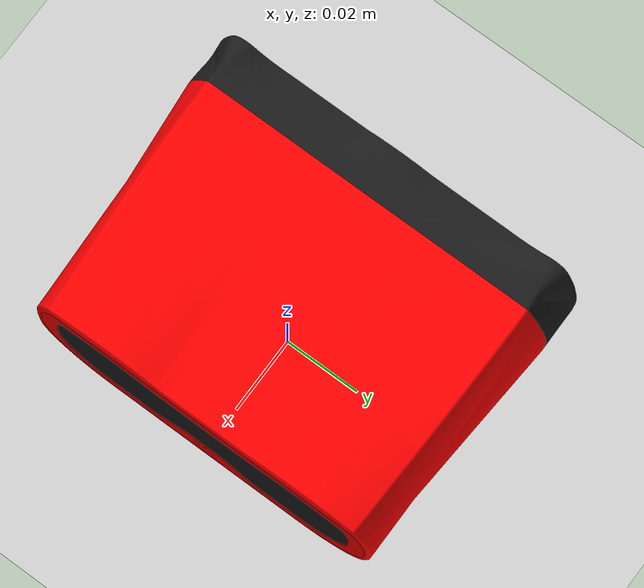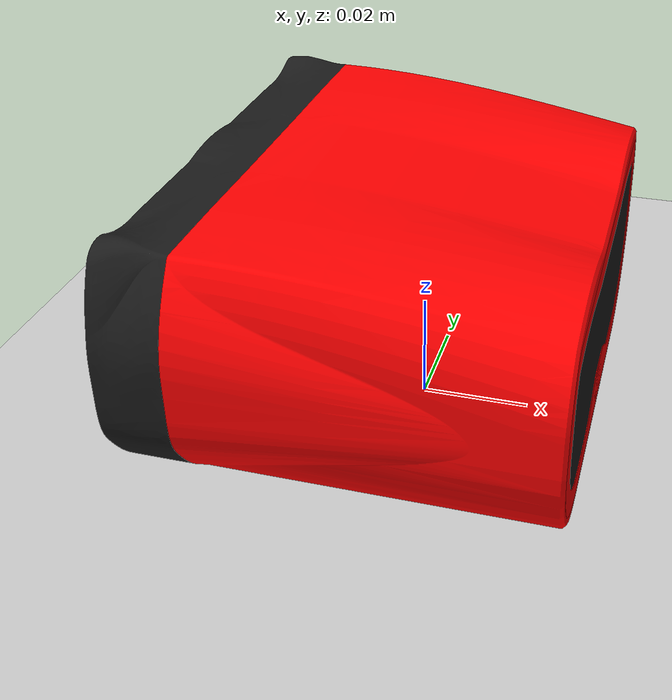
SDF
<?xml version="1.0" ?>
<sdf version="1.5">
  <world name="default">
    <!-- A global light source -->
    <include>
      <uri>model://sun</uri>
    </include>
    <!-- A ground plane -->
    <include>
      <uri>model://ground_plane</uri>
    </include>

    <!-- A testing model that includes the Romanoff sensor model -->
    <model name="romanoff">
      <include>
        <uri>model://romanoff</uri>
      </include>
      <static>true</static>
      <pos>0 0 1</pos>

    </model>

  </world>
</sdf>

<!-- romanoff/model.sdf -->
<sdf version="1.5">
    <model name="Romanoff">
	<static>true</static>
      <!-- Give the base link a unique name -->
      <link name="body">
	<!-- Add a ray sensor, and give it a name -->
	<sensor type="ray" name="sensor1">

	  <pose>0.03 0.045 0.05 0 -1.5707 1.59</pose>

	  <!-- Enable visualization to see the rays in the GUI -->
	  <visualize>true</visualize>

	  <!-- Set the update rate of the sensor -->
	  <update_rate>30</update_rate>
	<ray>

	  <!-- The scan element contains the horizontal and vertical beams.
	       We are leaving out the vertical beams for this tutorial. -->
	  <scan>

	    <!-- The horizontal beams -->
	    <horizontal>
	      <!-- The romanof has 8 horizontal receptors(samples) -->
	      <samples>40</samples>

	      <!-- Resolution is multiplied by samples to determine number of
		   simulated beams vs interpolated beams. See:
		   http://sdformat.org/spec?ver=1.6&elem=sensor#horizontal_resolution
		   -->
	      <resolution>1</resolution>

	      <!-- Minimum angle in radians -->
	      <min_angle>-0.26</min_angle>

	      <!-- Maximum angle in radians -->
	      <max_angle>0.26</max_angle>
	    </horizontal>
	    <vertical>
	      <!-- The romanof has 8 horizontal receptors(samples) -->
	      <samples>10</samples>

	      <!-- Resolution is multiplied by samples to determine number of
		   simulated beams vs interpolated beams. See:
		   http://sdformat.org/spec?ver=1.6&elem=sensor#horizontal_resolution
		   -->
	      <resolution>1</resolution>

	      <!-- Minimum angle in radians -->
	      <min_angle>-0.02</min_angle>

	      <!-- Maximum angle in radians -->
	      <max_angle>0.02</max_angle>
	    </vertical>

	  </scan>

	  <!-- Range defines characteristics of an individual beam -->
	  <range>

	    <!-- Minimum distance of the beam -->
	    <min>0.05</min>

	    <!-- Maximum distance of the beam -->
	    <max>70</max>

	    <!-- Linear resolution of the beam -->
	    <resolution>0.02</resolution>
	  </range>
	</ray>
          <plugin name="laser" filename="libawl16_gazebo_plugin.so">
            <topicName>/awl16</topicName>
            <frameName>phantom_intelligence</frameName>
          </plugin>
	</sensor>

        <inertial>
          <mass>1.2</mass>
          <inertia>
            <ixx>0.001087473</ixx>
            <iyy>0.001087473</iyy>
            <izz>0.001092437</izz>
            <ixy>0</ixy>
            <ixz>0</ixz>
            <iyz>0</iyz>
          </inertia>
        </inertial>
        <!-- Offset the base by half the lenght of the cylinder -->
        <pose>-0.057516 -0.051757 -0.0155 1.5707 0 1.5707</pose>

        <!-- The visual is mostly a copy of the collision -->
	 <visual name="base_visual">
	   <geometry>
	     <!-- The mesh tag indicates that we will use a 3D mesh as
		  a visual -->
	     <mesh>
	       <!-- The URI should refer to the 3D mesh. The "model:"
		   URI scheme indicates that the we are referencing a Gazebo
		   model. -->
	       <uri>model://romanoff/meshes/romanoff_body.stl</uri>
	     </mesh>
	   </geometry>
	  <material>
	    <ambient>1 0 0 1</ambient>
	    <diffuse>1 0 0 1</diffuse>
	    <specular>0.1 0.1 0.1 1</specular>
	    <emissive>0 0 0 0</emissive>
	  </material>
	 </visual>
      </link>

      <link name="front">
        <inertial>
          <mass>1.2</mass>
          <inertia>
            <ixx>0.001087473</ixx>
            <iyy>0.001087473</iyy>
            <izz>0.001092437</izz>
            <ixy>0</ixy>
            <ixz>0</ixz>
            <iyz>0</iyz>
          </inertia>
        </inertial>
        <!-- Offset the base by half the lenght of the cylinder -->
        <pose>-0.057516 -0.051757 -0.0155 1.5707 0 1.5707</pose>

        <!-- The visual is mostly a copy of the collision -->
	 <visual name="base_visual">
	   <geometry>
	     <!-- The mesh tag indicates that we will use a 3D mesh as
		  a visual -->
	     <mesh>
	       <!-- The URI should refer to the 3D mesh. The "model:"
		   URI scheme indicates that the we are referencing a Gazebo
		   model. -->
	       <uri>model://romanoff/meshes/romanoff_front.stl</uri>
	     </mesh>
	   </geometry>
	  <material>
	    <ambient>1 0 0 1</ambient>
	    <diffuse>1 0 0 1</diffuse>
	    <specular>0.1 0.1 0.1 1</specular>
	    <emissive>0 0 0 0</emissive>
	  </material>
	 </visual>
      </link>

      <link name="back">
        <inertial>
          <mass>1.2</mass>
          <inertia>
            <ixx>0.001087473</ixx>
            <iyy>0.001087473</iyy>
            <izz>0.001092437</izz>
            <ixy>0</ixy>
            <ixz>0</ixz>
            <iyz>0</iyz>
          </inertia>
        </inertial>
        <!-- Offset the base by half the lenght of the cylinder -->
        <pose>-0.057516 -0.051757 -0.0155 1.5707 0 1.5707</pose>

        <!-- The visual is mostly a copy of the collision -->
	 <visual name="base_visual">
	   <geometry>
	     <!-- The mesh tag indicates that we will use a 3D mesh as
		  a visual -->
	     <mesh>
	       <!-- The URI should refer to the 3D mesh. The "model:"
		   URI scheme indicates that the we are referencing a Gazebo
		   model. -->
	       <uri>model://romanoff/meshes/romanoff_back.stl</uri>
	     </mesh>
	   </geometry>
	  <material>
	    <ambient>0.1 0.1 0.1 1</ambient>
	    <diffuse>0.1 0.1 0.1 1</diffuse>
	    <specular>0.1 0.1 0.1 1</specular>
	    <emissive>0 0 0 0</emissive>
	  </material>
	 </visual>
      </link>

      <link name="window">
        <inertial>
          <mass>1.2</mass>
          <inertia>
            <ixx>0.001087473</ixx>
            <iyy>0.001087473</iyy>
            <izz>0.001092437</izz>
            <ixy>0</ixy>
            <ixz>0</ixz>
            <iyz>0</iyz>
          </inertia>
        </inertial>
        <!-- Offset the base by half the lenght of the cylinder -->
        <pose>-0.057516 -0.051757 -0.0155 1.5707 0 1.5707</pose>

        <!-- The visual is mostly a copy of the collision -->
	 <visual name="base_visual">
	   <geometry>
	     <!-- The mesh tag indicates that we will use a 3D mesh as
		  a visual -->
	     <mesh>
	       <!-- The URI should refer to the 3D mesh. The "model:"
		   URI scheme indicates that the we are referencing a Gazebo
		   model. -->
	       <uri>model://romanoff/meshes/romanoff_window.stl</uri>
	     </mesh>
	   </geometry>
	  <material>
	    <ambient>0.1 0.1 0.1 1</ambient>
	    <diffuse>0.1 0.1 0.1 1</diffuse>
	    <specular>0.1 0.1 0.1 1</specular>
	    <emissive>0 0 0 0</emissive>
	  </material>
	 </visual>
      </link>
	<!-- Each joint must have a unique name -->

	<!-- Each joint must have a unique name -->
	<joint type="fixed" name="joint2">

	  <!-- Position the joint at the bottom of the top link -->
	  <pose>0 0 -0.036785 0 0 0</pose>

	  <!-- Use the base link as the parent of the joint -->
	  <parent>body</parent>

	  <!-- Use the top link as the child of the joint -->
	  <child>front</child>
	</joint>
	<!-- Each joint must have a unique name -->
	<joint type="fixed" name="joint3">

	  <!-- Position the joint at the bottom of the top link -->
	  <pose>0 0 -0.036785 0 0 0</pose>

	  <!-- Use the base link as the parent of the joint -->
	  <parent>front</parent>

	  <!-- Use the top link as the child of the joint -->
	  <child>window</child>
	</joint>
	<joint type="fixed" name="joint4">

	  <!-- Position the joint at the bottom of the top link -->
	  <pose>0 0 -0.036785 0 0 0</pose>

	  <!-- Use the base link as the parent of the joint -->
	  <parent>body</parent>

	  <!-- Use the top link as the child of the joint -->
	  <child>back</child>
	</joint>

    </model>
</sdf>
